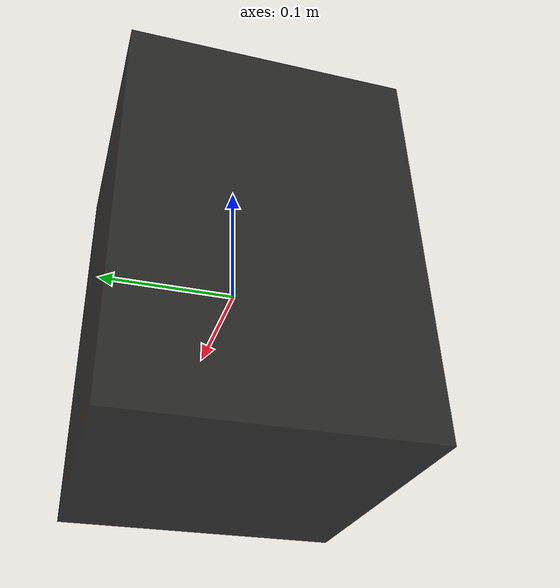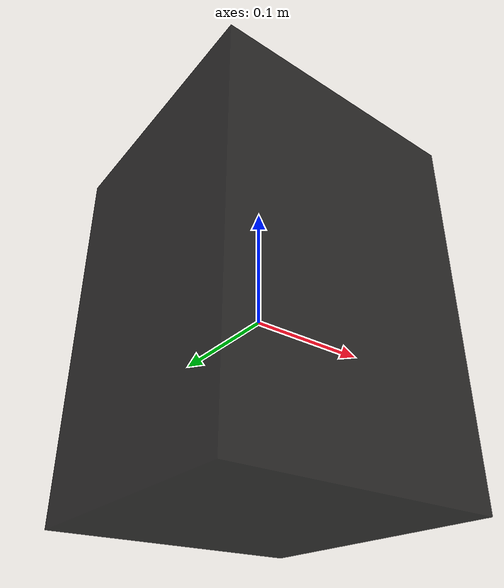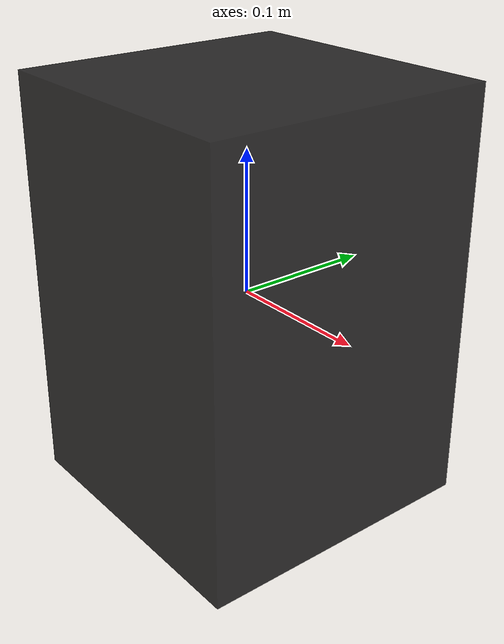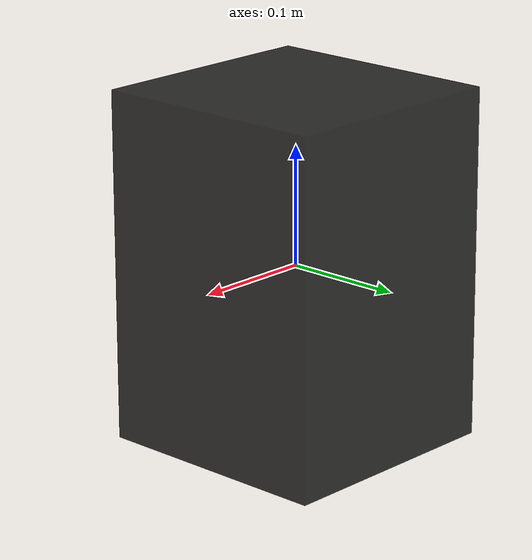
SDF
<?xml version='1.0'?>
<sdf version='1.6'>
  <model name='box1'>
    <link name='link'>
      <self_collide>0</self_collide>
      <kinematic>0</kinematic>
      <pose frame=''>0 0 0 0 0 0</pose>
      <visual name='visual'>
        <geometry>
          <box>
            <size>0.203 0.206 0.293</size>
          </box>
        </geometry>
        <material>
          <ambient>0.0 0.0 0.0 0.8</ambient>
        </material>
        <transparency>0</transparency>
      </visual>
      <gravity>0</gravity>
    </link>
  </model>
</sdf>
